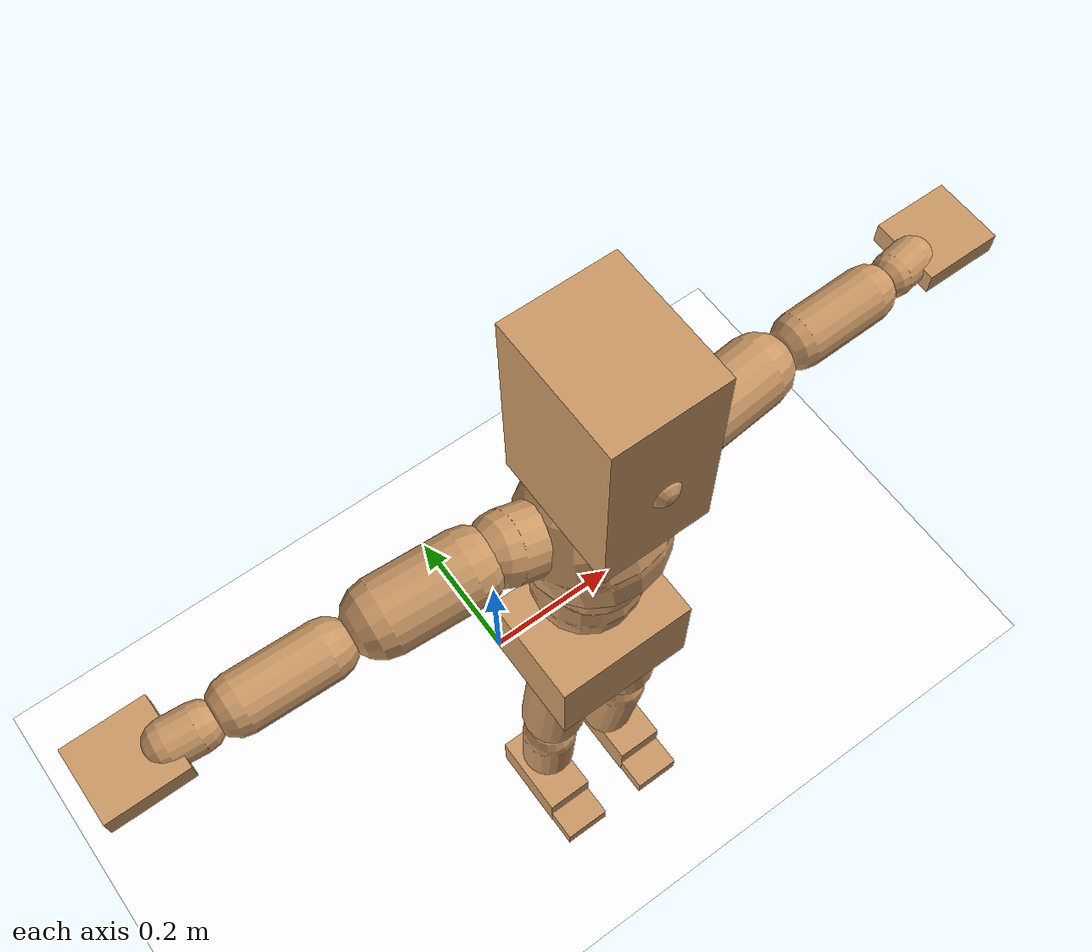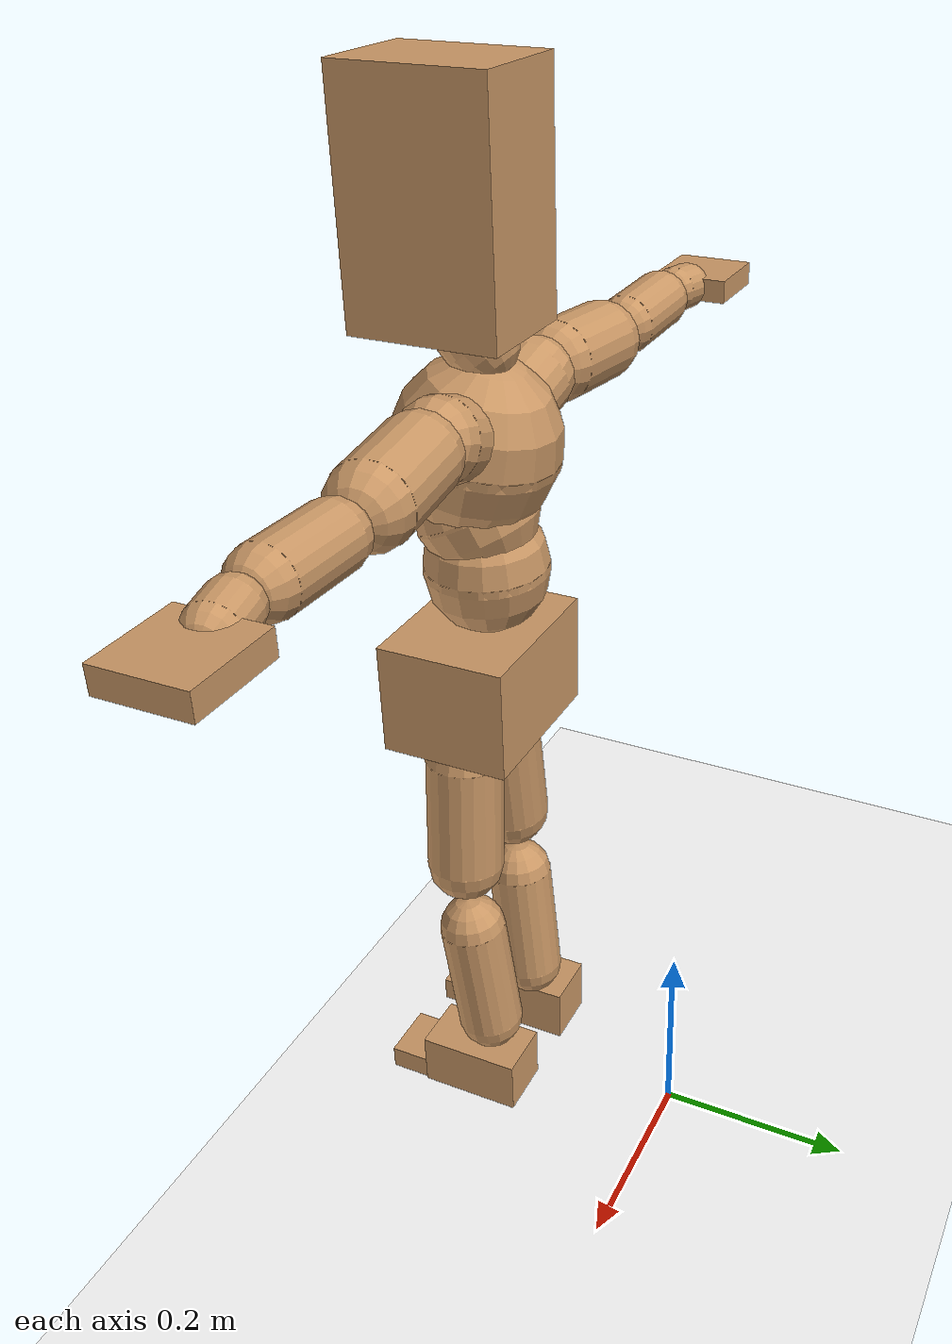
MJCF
<mujoco model="humanoid">
  <option integrator="implicitfast" />

  <visual>
    <global offwidth="1280" offheight="960" />
    <headlight active="1" ambient="0.34 0.34 0.34" diffuse="0.5 0.5 0.5" />
  </visual>

  <default>
    <joint damping="2" stiffness="2" armature="0.01" limited="true" solimplimit="0 .99 .01" />
    <geom condim="1" friction="0.7 0.005 0.0001" solimp=".99 .99 .003" solref="0.015 1" margin="0.001" rgba="0.8 0.6 .4 1" />
    <default class="smplcontact">
      <geom condim="3" friction="1. 0.005 0.0001" solref="0.015 1" solimp="0.98 0.98 0.001" priority="1" />
    </default>
    <default class="stiff_medium">
      <joint stiffness="10" />
    </default>
    <default class="stiff_medium_higher">
      <joint stiffness="50" />
    </default>
    <default class="stiff_high">
      <joint stiffness="100" />
    </default>
  </default>

  <asset>
    <texture type="skybox" builtin="gradient" rgb1="0.99 0.99 0.99" rgb2="0.608 0.828 0.892" width="100" />
    <texture builtin="flat" height="1278" mark="cross" markrgb="1 1 1" name="texgeom" random="0.01" rgb1="0.8 0.6 0.4" rgb2="0.8 0.6 0.4" type="cube" width="127" />
    <texture name="texplane" type="2d" builtin="checker" markrgb="1 1 1" rgb1="0.756 0.772 0.76" rgb2="0.6 0.6 0.6" width="100" height="100" />
    <material name="MatPlane" reflectance="0.5" texture="texplane" texrepeat="1 1" texuniform="true" />
    <material name="geom" texture="texgeom" texuniform="true" />
  </asset>

  <worldbody>
    <light name="tracking_light" pos="0 0 7" dir="0 0 -1" directional="true" cutoff="100" exponent="1" diffuse="1 1 1" specular="0.1 0.1 0.1" mode="trackcom" />
    <camera name="back" pos="0 3 2.4" xyaxes="-1 0 0 0 -1 2" mode="trackcom" />
    <camera name="side" pos="-3 0 2.4" xyaxes="0 -1 0 1 0 2" mode="trackcom" />
    <camera name="front_side" pos="-2.8 -2.8 0.8" xyaxes="0.5 -0.5 0 0.1 0.1 1" mode="trackcom" />
    <geom condim="3" name="floor" pos="0 0 0" rgba="1 1 1 1" size="100 100 .2" type="plane" material="MatPlane" />
    <body name="Pelvis" pos="-0.0018 -0.2233 0.516983" euler="90 0 0">
      <site name="Pelvis" size="0.01" />
      <freejoint name="Pelvis" />
      <geom type="box" pos="-0.0000 -0.0121 -0.0055" size="0.0853936 0.0576746 0.0663019" quat="1.0000 0.0000 0.0000 0.0000" density="3165.830099" name="Pelvis" />
      <body name="L_Hip" pos="0.0379904 -0.0499615 -0.00371705">
        <joint name="L_Hip_x" type="hinge" pos="0 0 0" axis="1 0 0" stiffness="10" range="-160.0 22.92" class="stiff_medium" damping="15" />
        <joint name="L_Hip_y" type="hinge" pos="0 0 0" axis="0 1 0" stiffness="10" range="-70.0 70.0" class="stiff_medium" damping="10" />
        <joint name="L_Hip_z" type="hinge" pos="0 0 0" axis="0 0 1" stiffness="10" range="-28.65 90.0" class="stiff_medium" damping="10" />
        <geom type="capsule" density="2040.816327" fromto="0.00377171 -0.0409968 -0.000491962 0.0149775 -0.164097 -0.00196785" size="0.0399985" name="L_Hip" />
        <body name="L_Knee" pos="0.0187492 -0.205093 -0.00245981">
          <joint name="L_Knee_x" type="hinge" pos="0 0 0" axis="1 0 0" range="-5.16 171.89" damping="8" />
          <joint name="L_Knee_y" type="hinge" pos="0 0 0" axis="0 1 0" range="-4.58 6.88" damping="8" />
          <joint name="L_Knee_z" type="hinge" pos="0 0 0" axis="0 0 1" range="-6.88 4.58" damping="8" />
          <geom type="capsule" density="1234.567901" fromto="-0.00147589 -0.0435113 -0.00475563 -0.00595821 -0.174045 -0.0191319" size="0.0351856" name="L_Knee" />
          <body name="L_Ankle" pos="-0.00743409 -0.217557 -0.0238875">
            <joint name="L_Ankle_x" type="hinge" pos="0 0 0" axis="1 0 0" range="-45.84 45.84" class="stiff_medium" damping="6" />
            <joint name="L_Ankle_y" type="hinge" pos="0 0 0" axis="0 1 0" range="-74.48 22.92" class="stiff_medium" damping="3" />
            <joint name="L_Ankle_z" type="hinge" pos="0 0 0" axis="0 0 1" range="-4.58 4.58" class="stiff_medium" damping="6" />
            <geom type="box" pos="0.0127363 -0.0130643 0.0132283" size="0.0314134 0.0301777 0.0552824" quat="1.0000 0.0000 0.0000 0.0000" density="449.071558" name="L_Ankle" class="smplcontact" />
            <body name="L_Toe" pos="0.0144309 -0.0305016 0.0652123">
              <joint name="L_Toe_x" type="hinge" pos="0 0 0" axis="1 0 0" range="-91.67 22.92" />
              <joint name="L_Toe_y" type="hinge" pos="0 0 0" axis="0 1 0" range="-4.58 4.58" />
              <joint name="L_Toe_z" type="hinge" pos="0 0 0" axis="0 0 1" range="-4.58 4.58" />
              <geom type="box" pos="-0.00163987 0.00300643 0.0135563" size="0.0310882 0.0130076 0.0322589" quat="1.0000 0.0000 0.0000 0.0000" density="423.206892" name="L_Toe" class="smplcontact" />
            </body>
          </body>
        </body>
      </body>
      <body name="R_Hip" pos="-0.0370065 -0.0494695 -0.00235049">
        <joint name="R_Hip_x" type="hinge" pos="0 0 0" axis="1 0 0" stiffness="10" range="-160.0 22.92" class="stiff_medium" damping="15" />
        <joint name="R_Hip_y" type="hinge" pos="0 0 0" axis="0 1 0" stiffness="10" range="-70.0 70.0" class="stiff_medium" damping="10" />
        <joint name="R_Hip_z" type="hinge" pos="0 0 0" axis="0 0 1" stiffness="10" range="-90.0 28.65" class="stiff_medium" damping="10" />
        <geom type="capsule" density="2040.816327" fromto="-0.00420901 -0.0418168 -0.000983924 -0.0167267 -0.167322 -0.00388103" size="0.0394131" name="R_Hip" />
        <body name="R_Knee" pos="-0.0209357 -0.209139 -0.00486496">
          <joint name="R_Knee_x" type="hinge" pos="0 0 0" axis="1 0 0" range="-5.16 171.89" damping="8" />
          <joint name="R_Knee_y" type="hinge" pos="0 0 0" axis="0 1 0" range="-6.88 4.58" damping="8" />
          <joint name="R_Knee_z" type="hinge" pos="0 0 0" axis="0 0 1" range="-4.58 6.88" damping="8" />
          <geom type="capsule" density="1234.567901" fromto="0.0017492 -0.043566 -0.00464631 0.00688747 -0.174209 -0.0184759" size="0.0351856" name="R_Knee" />
          <body name="R_Ankle" pos="0.00863667 -0.217775 -0.0231222">
            <joint name="R_Ankle_x" type="hinge" pos="0 0 0" axis="1 0 0" range="-45.84 45.84" class="stiff_medium" damping="6" />
            <joint name="R_Ankle_y" type="hinge" pos="0 0 0" axis="0 1 0" range="-22.92 74.48" class="stiff_medium" damping="3" />
            <joint name="R_Ankle_z" type="hinge" pos="0 0 0" axis="0 0 1" range="-4.58 4.58" class="stiff_medium" damping="6" />
            <geom type="box" pos="-0.0115884 -0.00951127 0.0139936" size="0.0314134 0.0310882 0.056258" quat="1.0000 0.0000 0.0000 0.0000" density="434.700981" name="R_Ankle" class="smplcontact" />
            <body name="R_Toe" pos="-0.0138843 -0.0262926 0.0673988">
              <joint name="R_Toe_x" type="hinge" pos="0 0 0" axis="1 0 0" range="-91.67 22.92" />
              <joint name="R_Toe_y" type="hinge" pos="0 0 0" axis="0 1 0" range="-4.58 4.58" />
              <joint name="R_Toe_z" type="hinge" pos="0 0 0" axis="0 0 1" range="-4.58 4.58" />
              <geom type="box" pos="0.00229582 0.00245981 0.0124084" size="0.0311533 0.0140482 0.0320638" quat="1.0000 0.0000 0.0000 0.0000" density="407.384095" name="R_Toe" class="smplcontact" />
            </body>
          </body>
        </body>
      </body>
      <body name="Torso" pos="-0.00156977 0.0684419 -0.0167651">
        <joint name="Torso_x" type="hinge" pos="0 0 0" axis="1 0 0" range="-25.78 57.3" class="stiff_medium" damping="15" />
        <joint name="Torso_y" type="hinge" pos="0 0 0" axis="0 1 0" range="-57.3 57.3" class="stiff_high" damping="20" />
        <joint name="Torso_z" type="hinge" pos="0 0 0" axis="0 0 1" range="-34.38 34.38" class="stiff_high" damping="20" />
        <geom type="capsule" density="2040.816327" fromto="0.00156977 0.0381768 0.000313954 0.00188372 0.0466535 0.000376744" size="0.0614291" name="Torso" />
        <body name="Spine" pos="0.00345349 0.0848931 0.000690698">
          <joint name="Spine_x" type="hinge" pos="0 0 0" axis="1 0 0" stiffness="10" range="-25.78 57.3" class="stiff_medium" damping="15" />
          <joint name="Spine_y" type="hinge" pos="0 0 0" axis="0 1 0" stiffness="10" range="-57.3 57.3" class="stiff_high" damping="8" />
          <joint name="Spine_z" type="hinge" pos="0 0 0" axis="0 0 1" stiffness="20" range="-34.38 34.38" class="stiff_high" damping="12" />
          <geom type="capsule" density="2040.816327" fromto="0.000439535 0.0149442 0.00715814 0.000502326 0.0182721 0.0087907" size="0.0603107" name="Spine" />
          <body name="Chest" pos="0.000941861 0.0332163 0.0159488">
            <joint name="Chest_x" type="hinge" pos="0 0 0" axis="1 0 0" stiffness="10" range="-25.78 57.3" class="stiff_medium" damping="15" />
            <joint name="Chest_y" type="hinge" pos="0 0 0" axis="0 1 0" stiffness="10" range="-57.3 57.3" class="stiff_high" damping="8" />
            <joint name="Chest_z" type="hinge" pos="0 0 0" axis="0 0 1" stiffness="20" range="-34.38 34.38" class="stiff_high" damping="12" />
            <geom type="capsule" density="2040.816327" fromto="-0.000565116 0.0428233 -0.0108628 -0.000627907 0.0523047 -0.0133116" size="0.0800415" name="Chest" />
            <body name="Neck" pos="-0.00175814 0.134309 -0.0269372">
              <joint name="Neck_x" type="hinge" pos="0 0 0" axis="1 0 0" range="-28.65 57.3" class="stiff_medium_higher" damping="10" />
              <joint name="Neck_y" type="hinge" pos="0 0 0" axis="0 1 0" range="-40.11 40.11" class="stiff_medium_higher" damping="10" />
              <joint name="Neck_z" type="hinge" pos="0 0 0" axis="0 0 1" range="-40.11 40.11" class="stiff_medium_higher" damping="10" />
              <geom type="capsule" density="1000" fromto="0.000627907 0.00816279 0.00646744 0.00257442 0.0326512 0.025807" size="0.0348284" name="Neck" />
              <body name="Head" pos="0.00437558 0.0546947 0.0431668">
                <joint name="Head_x" type="hinge" pos="0 0 0" axis="1 0 0" range="-28.65 57.3" class="stiff_medium_higher" damping="2" />
                <joint name="Head_y" type="hinge" pos="0 0 0" axis="0 1 0" range="-40.11 40.11" class="stiff_medium_higher" damping="2" />
                <joint name="Head_z" type="hinge" pos="0 0 0" axis="0 0 1" range="-40.11 40.11" class="stiff_medium_higher" damping="2" />
                <geom type="box" pos="-0.00353412 0.0737117 -0.0097609" size="0.0580232 0.110493 0.0727684" quat="1.0000 0.0000 0.0000 0.0000" density="1018.069894" name="Head" />
                <geom type="capsule" name="nose" size="0.0191496 0.00957479" pos="0 0.058902 0.0420729" quat="1 0 0 0" mass="0" contype="0" conaffinity="0" />
              </body>
            </body>
            <body name="L_Thorax" pos="0.0456172 0.0704519 -0.0197404">
              <joint name="L_Thorax_x" type="hinge" pos="0 0 0" axis="1 0 0" range="-10.89 4.58" class="stiff_medium_higher" damping="20" />
              <joint name="L_Thorax_y" type="hinge" pos="0 0 0" axis="0 1 0" range="-28.65 17.19" class="stiff_medium_higher" damping="20" />
              <joint name="L_Thorax_z" type="hinge" pos="0 0 0" axis="0 0 1" range="-31.51 40.11" class="stiff_medium_higher" damping="20" />
              <geom type="capsule" density="1000" fromto="0.0105359 0.00353128 -0.00104202 0.0421438 0.0141251 -0.00411018" size="0.0392358" name="L_Thorax" />
              <body name="L_Shoulder" pos="0.0526797 0.0176564 -0.00515219">
                <joint name="L_Shoulder_x" type="hinge" pos="0 0 0" axis="1 0 0" range="-97.4 97.4" class="stiff_medium" damping="6" />
                <joint name="L_Shoulder_y" type="hinge" pos="0 0 0" axis="0 1 0" range="-108.86 80.21" class="stiff_medium" damping="6" />
                <joint name="L_Shoulder_z" type="hinge" pos="0 0 0" axis="0 0 1" range="-97.4 85.94" class="stiff_medium" damping="6" />
                <geom type="capsule" density="1000" fromto="0.0300448 -0.00150513 -0.00318394 0.120237 -0.00590476 -0.0127358" size="0.0389346" name="L_Shoulder" />
                <body name="L_Elbow" pos="0.150282 -0.00740989 -0.0159197">
                  <joint name="L_Elbow_x" type="hinge" pos="0 0 0" axis="1 0 0" range="-17.19 4.58" damping="5" />
                  <joint name="L_Elbow_y" type="hinge" pos="0 0 0" axis="0 1 0" range="-180.0 17.19" damping="5" />
                  <joint name="L_Elbow_z" type="hinge" pos="0 0 0" axis="0 0 1" range="-100.84 4.58" damping="5" />
                  <geom type="capsule" density="1000" fromto="0.0288291 0.00104202 -0.00011578 0.115432 0.00416807 -0.000521008" size="0.0305" name="L_Elbow" />
                  <body name="L_Wrist" pos="0.144261 0.00521008 -0.000694678">
                    <joint name="L_Wrist_x" type="hinge" pos="0 0 0" axis="1 0 0" range="-180.0 22.92" />
                    <joint name="L_Wrist_y" type="hinge" pos="0 0 0" axis="0 1 0" range="-17.19 17.19" />
                    <joint name="L_Wrist_z" type="hinge" pos="0 0 0" axis="0 0 1" range="-22.92 22.92" />
                    <geom type="capsule" density="1000" fromto="0.00972549 -0.000926237 -0.00173669 0.0389019 -0.00376284 -0.00694678" size="0.0239482" name="L_Wrist" class="smplcontact" />
                    <body name="L_Hand" pos="0.0486274 -0.00474696 -0.00862558">
                      <joint name="L_Hand_x" type="hinge" pos="0 0 0" axis="1 0 0" range="-17.19 17.19" />
                      <joint name="L_Hand_y" type="hinge" pos="0 0 0" axis="0 1 0" range="-51.57 51.57" />
                      <joint name="L_Hand_z" type="hinge" pos="0 0 0" axis="0 0 1" range="-91.67 91.67" />
                      <geom type="box" pos="0.0285397 0.000578898 -0.00335761" size="0.0440556 0.0118988 0.0405161" quat="1.0000 0.0000 0.0000 0.0000" density="400.552564" name="L_Hand" class="smplcontact" />
                    </body>
                  </body>
                </body>
              </body>
            </body>
            <body name="R_Thorax" pos="-0.0473539 0.0687731 -0.0223455">
              <joint name="R_Thorax_x" type="hinge" pos="0 0 0" axis="1 0 0" range="-10.89 4.58" class="stiff_medium_higher" damping="20" />
              <joint name="R_Thorax_y" type="hinge" pos="0 0 0" axis="0 1 0" range="-17.19 28.65" class="stiff_medium_higher" damping="20" />
              <joint name="R_Thorax_z" type="hinge" pos="0 0 0" axis="0 0 1" range="-40.11 31.51" class="stiff_medium_higher" damping="20" />
              <geom type="capsule" density="1000" fromto="-0.0111148 0.00376284 -0.00104202 -0.0444594 0.0150513 -0.00422596" size="0.0384828" name="R_Thorax" />
              <body name="R_Shoulder" pos="-0.0555742 0.0188721 -0.00526797">
                <joint name="R_Shoulder_x" type="hinge" pos="0 0 0" axis="1 0 0" range="-97.4 97.4" class="stiff_medium" damping="6" />
                <joint name="R_Shoulder_y" type="hinge" pos="0 0 0" axis="0 1 0" range="-80.21 108.86" class="stiff_medium" damping="6" />
                <joint name="R_Shoulder_z" type="hinge" pos="0 0 0" axis="0 0 1" range="-85.94 97.4" class="stiff_medium" damping="6" />
                <geom type="capsule" density="1000" fromto="-0.0293501 -0.00156302 -0.00248926 -0.117516 -0.00619421 -0.00989916" size="0.0399889" name="R_Shoulder" />
                <body name="R_Elbow" pos="-0.146866 -0.00769934 -0.0123884">
                  <joint name="R_Elbow_x" type="hinge" pos="0 0 0" axis="1 0 0" range="-17.19 4.58" damping="5" />
                  <joint name="R_Elbow_y" type="hinge" pos="0 0 0" axis="0 1 0" range="-17.19 180.0" damping="5" />
                  <joint name="R_Elbow_z" type="hinge" pos="0 0 0" axis="0 0 1" range="-4.58 100.84" damping="5" />
                  <geom type="capsule" density="1000" fromto="-0.0295817 0.000926237 -0.000636788 -0.118211 0.00358917 -0.00254715" size="0.030726" name="R_Elbow" />
                  <body name="R_Wrist" pos="-0.147793 0.0045154 -0.00324183">
                    <joint name="R_Wrist_x" type="hinge" pos="0 0 0" axis="1 0 0" range="-180.0 22.92" />
                    <joint name="R_Wrist_y" type="hinge" pos="0 0 0" axis="0 1 0" range="-17.19 17.19" />
                    <joint name="R_Wrist_z" type="hinge" pos="0 0 0" axis="0 0 1" range="-22.92 22.92" />
                    <geom type="capsule" density="1000" fromto="-0.00978338 -0.000694678 -0.00121569 -0.0391914 -0.0028366 -0.00480485" size="0.0245506" name="R_Wrist" class="smplcontact" />
                    <body name="R_Hand" pos="-0.0489748 -0.00353128 -0.00596265">
                      <joint name="R_Hand_x" type="hinge" pos="0 0 0" axis="1 0 0" range="-17.19 17.19" />
                      <joint name="R_Hand_y" type="hinge" pos="0 0 0" axis="0 1 0" range="-51.57 51.57" />
                      <joint name="R_Hand_z" type="hinge" pos="0 0 0" axis="0 0 1" range="-91.67 91.67" />
                      <geom type="box" pos="-0.0267451 -0.000521008 -0.00457329" size="0.0428507 0.0123506 0.0411186" quat="1.0000 0.0000 0.0000 0.0000" density="403.679611" name="R_Hand" class="smplcontact" />
                    </body>
                  </body>
                </body>
              </body>
            </body>
          </body>
        </body>
      </body>
    </body>
  </worldbody>
  <actuator>
    <general name="L_Hip_x" joint="L_Hip_x" biastype="affine" gainprm="287.33006409732246" biasprm="-215.3247604770444 -180 -2.0" ctrllimited="true" ctrlrange="-1 1" forcerange="-360 360" />
    <general name="L_Hip_y" joint="L_Hip_y" biastype="affine" gainprm="219.9114857512855" biasprm="0.0 -180 -2.0" ctrllimited="true" ctrlrange="-1 1" forcerange="-360 360" />
    <general name="L_Hip_z" joint="L_Hip_z" biastype="affine" gainprm="186.3749841742145" biasprm="96.3683546488669 -180 -2.0" ctrllimited="true" ctrlrange="-1 1" forcerange="-360 360" />
    <general name="L_Knee_x" joint="L_Knee_x" biastype="affine" gainprm="278.10948965903646" biasprm="261.8988715665131 -180 -2.0" ctrllimited="true" ctrlrange="-1 1" forcerange="-360 360" />
    <general name="L_Knee_y" joint="L_Knee_y" biastype="affine" gainprm="18.001325905069514" biasprm="3.612831551628262 -180 -2.0" ctrllimited="true" ctrlrange="-1 1" forcerange="-360 360" />
    <general name="L_Knee_z" joint="L_Knee_z" biastype="affine" gainprm="18.001325905069514" biasprm="-3.612831551628262 -180 -2.0" ctrllimited="true" ctrlrange="-1 1" forcerange="-360 360" />
    <general name="L_Ankle_x" joint="L_Ankle_x" biastype="affine" gainprm="72.00530362027807" biasprm="0.0 -90 -2.0" ctrllimited="true" ctrlrange="-1 1" forcerange="-180 180" />
    <general name="L_Ankle_y" joint="L_Ankle_y" biastype="affine" gainprm="76.49778111491148" biasprm="-40.49512930477244 -90 -2.0" ctrllimited="true" ctrlrange="-1 1" forcerange="-180 180" />
    <general name="L_Ankle_z" joint="L_Ankle_z" biastype="affine" gainprm="7.1942471767206255" biasprm="0.0 -90 -2.0" ctrllimited="true" ctrlrange="-1 1" forcerange="-180 180" />
    <general name="L_Toe_x" joint="L_Toe_x" biastype="affine" gainprm="71.99902043497087" biasprm="-43.19689898685965 -72 -0.8" ctrllimited="true" ctrlrange="-1 1" forcerange="-144 144" />
    <general name="L_Toe_y" joint="L_Toe_y" biastype="affine" gainprm="5.755397741376501" biasprm="0.0 -72 -0.8" ctrllimited="true" ctrlrange="-1 1" forcerange="-144 144" />
    <general name="L_Toe_z" joint="L_Toe_z" biastype="affine" gainprm="5.755397741376501" biasprm="0.0 -72 -0.8" ctrllimited="true" ctrlrange="-1 1" forcerange="-144 144" />
    <general name="R_Hip_x" joint="R_Hip_x" biastype="affine" gainprm="287.33006409732246" biasprm="-215.3247604770444 -180 -2.0" ctrllimited="true" ctrlrange="-1 1" forcerange="-360 360" />
    <general name="R_Hip_y" joint="R_Hip_y" biastype="affine" gainprm="219.9114857512855" biasprm="0.0 -180 -2.0" ctrllimited="true" ctrlrange="-1 1" forcerange="-360 360" />
    <general name="R_Hip_z" joint="R_Hip_z" biastype="affine" gainprm="186.3749841742145" biasprm="-96.3683546488669 -180 -2.0" ctrllimited="true" ctrlrange="-1 1" forcerange="-360 360" />
    <general name="R_Knee_x" joint="R_Knee_x" biastype="affine" gainprm="278.10948965903646" biasprm="261.8988715665131 -180 -2.0" ctrllimited="true" ctrlrange="-1 1" forcerange="-360 360" />
    <general name="R_Knee_y" joint="R_Knee_y" biastype="affine" gainprm="18.001325905069514" biasprm="-3.612831551628262 -180 -2.0" ctrllimited="true" ctrlrange="-1 1" forcerange="-360 360" />
    <general name="R_Knee_z" joint="R_Knee_z" biastype="affine" gainprm="18.001325905069514" biasprm="3.612831551628262 -180 -2.0" ctrllimited="true" ctrlrange="-1 1" forcerange="-360 360" />
    <general name="R_Ankle_x" joint="R_Ankle_x" biastype="affine" gainprm="72.00530362027807" biasprm="0.0 -90 -2.0" ctrllimited="true" ctrlrange="-1 1" forcerange="-180 180" />
    <general name="R_Ankle_y" joint="R_Ankle_y" biastype="affine" gainprm="76.49778111491148" biasprm="40.49512930477244 -90 -2.0" ctrllimited="true" ctrlrange="-1 1" forcerange="-180 180" />
    <general name="R_Ankle_z" joint="R_Ankle_z" biastype="affine" gainprm="7.1942471767206255" biasprm="0.0 -90 -2.0" ctrllimited="true" ctrlrange="-1 1" forcerange="-180 180" />
    <general name="R_Toe_x" joint="R_Toe_x" biastype="affine" gainprm="71.99902043497087" biasprm="-43.19689898685965 -72 -0.8" ctrllimited="true" ctrlrange="-1 1" forcerange="-144 144" />
    <general name="R_Toe_y" joint="R_Toe_y" biastype="affine" gainprm="5.755397741376501" biasprm="0.0 -72 -0.8" ctrllimited="true" ctrlrange="-1 1" forcerange="-144 144" />
    <general name="R_Toe_z" joint="R_Toe_z" biastype="affine" gainprm="5.755397741376501" biasprm="0.0 -72 -0.8" ctrllimited="true" ctrlrange="-1 1" forcerange="-144 144" />
    <general name="Torso_x" joint="Torso_x" biastype="affine" gainprm="174.00234510682668" biasprm="66.0153336274335 -240 -4.0" ctrllimited="true" ctrlrange="-1 1" forcerange="-360 360" />
    <general name="Torso_y" joint="Torso_y" biastype="affine" gainprm="240.0176787342602" biasprm="0.0 -240 -4.0" ctrllimited="true" ctrlrange="-1 1" forcerange="-360 360" />
    <general name="Torso_z" joint="Torso_z" biastype="affine" gainprm="144.01060724055614" biasprm="0.0 -240 -4.0" ctrllimited="true" ctrlrange="-1 1" forcerange="-360 360" />
    <general name="Spine_x" joint="Spine_x" biastype="affine" gainprm="174.00234510682668" biasprm="66.0153336274335 -240 -4.0" ctrllimited="true" ctrlrange="-1 1" forcerange="-360 360" />
    <general name="Spine_y" joint="Spine_y" biastype="affine" gainprm="240.0176787342602" biasprm="0.0 -240 -4.0" ctrllimited="true" ctrlrange="-1 1" forcerange="-360 360" />
    <general name="Spine_z" joint="Spine_z" biastype="affine" gainprm="144.01060724055614" biasprm="0.0 -240 -4.0" ctrllimited="true" ctrlrange="-1 1" forcerange="-360 360" />
    <general name="Chest_x" joint="Chest_x" biastype="affine" gainprm="174.00234510682668" biasprm="66.0153336274335 -240 -4.0" ctrllimited="true" ctrlrange="-1 1" forcerange="-360 360" />
    <general name="Chest_y" joint="Chest_y" biastype="affine" gainprm="240.0176787342602" biasprm="0.0 -240 -4.0" ctrllimited="true" ctrlrange="-1 1" forcerange="-360 360" />
    <general name="Chest_z" joint="Chest_z" biastype="affine" gainprm="144.01060724055614" biasprm="0.0 -240 -4.0" ctrllimited="true" ctrlrange="-1 1" forcerange="-360 360" />
    <general name="Neck_x" joint="Neck_x" biastype="affine" gainprm="27.00198885760427" biasprm="9.000662952534757 -36 -0.8" ctrllimited="true" ctrlrange="-1 1" forcerange="-72 72" />
    <general name="Neck_y" joint="Neck_y" biastype="affine" gainprm="25.20185626709732" biasprm="0.0 -36 -0.8" ctrllimited="true" ctrlrange="-1 1" forcerange="-72 72" />
    <general name="Neck_z" joint="Neck_z" biastype="affine" gainprm="25.20185626709732" biasprm="0.0 -36 -0.8" ctrllimited="true" ctrlrange="-1 1" forcerange="-72 72" />
    <general name="Head_x" joint="Head_x" biastype="affine" gainprm="18.001325905069514" biasprm="6.000441968356505 -24 -0.8" ctrllimited="true" ctrlrange="-1 1" forcerange="-48 48" />
    <general name="Head_y" joint="Head_y" biastype="affine" gainprm="16.801237511398213" biasprm="0.0 -24 -0.8" ctrllimited="true" ctrlrange="-1 1" forcerange="-48 48" />
    <general name="Head_z" joint="Head_z" biastype="affine" gainprm="16.801237511398213" biasprm="0.0 -24 -0.8" ctrllimited="true" ctrlrange="-1 1" forcerange="-48 48" />
    <general name="L_Thorax_x" joint="L_Thorax_x" biastype="affine" gainprm="16.200146117011364" biasprm="-6.6078165480505335 -120 -1.6" ctrllimited="true" ctrlrange="-1 1" forcerange="-240 240" />
    <general name="L_Thorax_y" joint="L_Thorax_y" biastype="affine" gainprm="48.00353574685204" biasprm="-12.00088393671301 -120 -1.6" ctrllimited="true" ctrlrange="-1 1" forcerange="-240 240" />
    <general name="L_Thorax_z" joint="L_Thorax_z" biastype="affine" gainprm="75.00028861670033" biasprm="9.00589894029074 -120 -1.6" ctrllimited="true" ctrlrange="-1 1" forcerange="-240 240" />
    <general name="L_Shoulder_x" joint="L_Shoulder_x" biastype="affine" gainprm="81.5976331892389" biasprm="0.0 -48 -1.6" ctrllimited="true" ctrlrange="-1 1" forcerange="-96 96" />
    <general name="L_Shoulder_y" joint="L_Shoulder_y" biastype="affine" gainprm="79.19745640189629" biasprm="-12.00088393671301 -48 -1.6" ctrllimited="true" ctrlrange="-1 1" forcerange="-96 96" />
    <general name="L_Shoulder_z" joint="L_Shoulder_z" biastype="affine" gainprm="76.79727961455369" biasprm="-4.800353574685214 -48 -1.6" ctrllimited="true" ctrlrange="-1 1" forcerange="-96 96" />
    <general name="L_Elbow_x" joint="L_Elbow_x" biastype="affine" gainprm="13.67849441372996" biasprm="-7.923096672353461 -72 -0.8" ctrllimited="true" ctrlrange="-1 1" forcerange="-144 144" />
    <general name="L_Elbow_y" joint="L_Elbow_y" biastype="affine" gainprm="123.89813107227425" biasprm="-102.29653998619085 -72 -0.8" ctrllimited="true" ctrlrange="-1 1" forcerange="-144 144" />
    <general name="L_Elbow_z" joint="L_Elbow_z" biastype="affine" gainprm="66.23733950828719" biasprm="-60.4819417669107 -72 -0.8" ctrllimited="true" ctrlrange="-1 1" forcerange="-144 144" />
    <general name="L_Wrist_x" joint="L_Wrist_x" biastype="affine" gainprm="21.24973270888136" biasprm="-16.449379134196157 -12 -0.8" ctrllimited="true" ctrlrange="-1 1" forcerange="-24 24" />
    <general name="L_Wrist_y" joint="L_Wrist_y" biastype="affine" gainprm="3.6002651810139037" biasprm="0.0 -12 -0.8" ctrllimited="true" ctrlrange="-1 1" forcerange="-24 24" />
    <general name="L_Wrist_z" joint="L_Wrist_z" biastype="affine" gainprm="4.800353574685205" biasprm="0.0 -12 -0.8" ctrllimited="true" ctrlrange="-1 1" forcerange="-24 24" />
    <general name="L_Hand_x" joint="L_Hand_x" biastype="affine" gainprm="3.6002651810139037" biasprm="0.0 -12 -0.8" ctrllimited="true" ctrlrange="-1 1" forcerange="-24 24" />
    <general name="L_Hand_y" joint="L_Hand_y" biastype="affine" gainprm="10.800795543041708" biasprm="0.0 -12 -0.8" ctrllimited="true" ctrlrange="-1 1" forcerange="-24 24" />
    <general name="L_Hand_z" joint="L_Hand_z" biastype="affine" gainprm="19.199319903638422" biasprm="0.0 -12 -0.8" ctrllimited="true" ctrlrange="-1 1" forcerange="-24 24" />
    <general name="R_Thorax_x" joint="R_Thorax_x" biastype="affine" gainprm="16.200146117011364" biasprm="-6.6078165480505335 -120 -1.6" ctrllimited="true" ctrlrange="-1 1" forcerange="-240 240" />
    <general name="R_Thorax_y" joint="R_Thorax_y" biastype="affine" gainprm="48.00353574685204" biasprm="12.000883936713002 -120 -1.6" ctrllimited="true" ctrlrange="-1 1" forcerange="-240 240" />
    <general name="R_Thorax_z" joint="R_Thorax_z" biastype="affine" gainprm="75.00028861670033" biasprm="-9.00589894029074 -120 -1.6" ctrllimited="true" ctrlrange="-1 1" forcerange="-240 240" />
    <general name="R_Shoulder_x" joint="R_Shoulder_x" biastype="affine" gainprm="81.5976331892389" biasprm="0.0 -48 -1.6" ctrllimited="true" ctrlrange="-1 1" forcerange="-96 96" />
    <general name="R_Shoulder_y" joint="R_Shoulder_y" biastype="affine" gainprm="79.19745640189629" biasprm="12.00088393671301 -48 -1.6" ctrllimited="true" ctrlrange="-1 1" forcerange="-96 96" />
    <general name="R_Shoulder_z" joint="R_Shoulder_z" biastype="affine" gainprm="76.79727961455369" biasprm="4.800353574685204 -48 -1.6" ctrllimited="true" ctrlrange="-1 1" forcerange="-96 96" />
    <general name="R_Elbow_x" joint="R_Elbow_x" biastype="affine" gainprm="13.67849441372996" biasprm="-7.923096672353461 -72 -0.8" ctrllimited="true" ctrlrange="-1 1" forcerange="-144 144" />
    <general name="R_Elbow_y" joint="R_Elbow_y" biastype="affine" gainprm="123.89813107227425" biasprm="102.29653998619085 -72 -0.8" ctrllimited="true" ctrlrange="-1 1" forcerange="-144 144" />
    <general name="R_Elbow_z" joint="R_Elbow_z" biastype="affine" gainprm="66.23733950828719" biasprm="60.481941766910694 -72 -0.8" ctrllimited="true" ctrlrange="-1 1" forcerange="-144 144" />
    <general name="R_Wrist_x" joint="R_Wrist_x" biastype="affine" gainprm="21.24973270888136" biasprm="-16.449379134196157 -12 -0.8" ctrllimited="true" ctrlrange="-1 1" forcerange="-24 24" />
    <general name="R_Wrist_y" joint="R_Wrist_y" biastype="affine" gainprm="3.6002651810139037" biasprm="0.0 -12 -0.8" ctrllimited="true" ctrlrange="-1 1" forcerange="-24 24" />
    <general name="R_Wrist_z" joint="R_Wrist_z" biastype="affine" gainprm="4.800353574685205" biasprm="0.0 -12 -0.8" ctrllimited="true" ctrlrange="-1 1" forcerange="-24 24" />
    <general name="R_Hand_x" joint="R_Hand_x" biastype="affine" gainprm="3.6002651810139037" biasprm="0.0 -12 -0.8" ctrllimited="true" ctrlrange="-1 1" forcerange="-24 24" />
    <general name="R_Hand_y" joint="R_Hand_y" biastype="affine" gainprm="10.800795543041708" biasprm="0.0 -12 -0.8" ctrllimited="true" ctrlrange="-1 1" forcerange="-24 24" />
    <general name="R_Hand_z" joint="R_Hand_z" biastype="affine" gainprm="19.199319903638422" biasprm="0.0 -12 -0.8" ctrllimited="true" ctrlrange="-1 1" forcerange="-24 24" />
  </actuator>
  <contact>
    <exclude body1="Torso" body2="Chest" />
    <exclude body1="Head" body2="Chest" />
    <exclude body1="R_Knee" body2="R_Toe" />
    <exclude body1="R_Knee" body2="L_Ankle" />
    <exclude body1="R_Knee" body2="L_Toe" />
    <exclude body1="L_Knee" body2="L_Toe" />
    <exclude body1="L_Knee" body2="R_Ankle" />
    <exclude body1="L_Knee" body2="R_Toe" />
    <exclude body1="L_Shoulder" body2="Chest" />
    <exclude body1="R_Shoulder" body2="Chest" />
  </contact>
  <sensor>
    <framelinvel name="sensor_Pelvis_framelinvel" objtype="xbody" objname="Pelvis" />
    <framelinvel name="sensor_L_Hip_framelinvel" objtype="xbody" objname="L_Hip" />
    <framelinvel name="sensor_L_Knee_framelinvel" objtype="xbody" objname="L_Knee" />
    <framelinvel name="sensor_L_Ankle_framelinvel" objtype="xbody" objname="L_Ankle" />
    <framelinvel name="sensor_L_Toe_framelinvel" objtype="xbody" objname="L_Toe" />
    <framelinvel name="sensor_R_Hip_framelinvel" objtype="xbody" objname="R_Hip" />
    <framelinvel name="sensor_R_Knee_framelinvel" objtype="xbody" objname="R_Knee" />
    <framelinvel name="sensor_R_Ankle_framelinvel" objtype="xbody" objname="R_Ankle" />
    <framelinvel name="sensor_R_Toe_framelinvel" objtype="xbody" objname="R_Toe" />
    <framelinvel name="sensor_Torso_framelinvel" objtype="xbody" objname="Torso" />
    <framelinvel name="sensor_Spine_framelinvel" objtype="xbody" objname="Spine" />
    <framelinvel name="sensor_Chest_framelinvel" objtype="xbody" objname="Chest" />
    <framelinvel name="sensor_Neck_framelinvel" objtype="xbody" objname="Neck" />
    <framelinvel name="sensor_Head_framelinvel" objtype="xbody" objname="Head" />
    <framelinvel name="sensor_L_Thorax_framelinvel" objtype="xbody" objname="L_Thorax" />
    <framelinvel name="sensor_L_Shoulder_framelinvel" objtype="xbody" objname="L_Shoulder" />
    <framelinvel name="sensor_L_Elbow_framelinvel" objtype="xbody" objname="L_Elbow" />
    <framelinvel name="sensor_L_Wrist_framelinvel" objtype="xbody" objname="L_Wrist" />
    <framelinvel name="sensor_L_Hand_framelinvel" objtype="xbody" objname="L_Hand" />
    <framelinvel name="sensor_R_Thorax_framelinvel" objtype="xbody" objname="R_Thorax" />
    <framelinvel name="sensor_R_Shoulder_framelinvel" objtype="xbody" objname="R_Shoulder" />
    <framelinvel name="sensor_R_Elbow_framelinvel" objtype="xbody" objname="R_Elbow" />
    <framelinvel name="sensor_R_Wrist_framelinvel" objtype="xbody" objname="R_Wrist" />
    <framelinvel name="sensor_R_Hand_framelinvel" objtype="xbody" objname="R_Hand" />
    <frameangvel name="sensor_Pelvis_frameangvel" objtype="xbody" objname="Pelvis" />
    <frameangvel name="sensor_L_Hip_frameangvel" objtype="xbody" objname="L_Hip" />
    <frameangvel name="sensor_L_Knee_frameangvel" objtype="xbody" objname="L_Knee" />
    <frameangvel name="sensor_L_Ankle_frameangvel" objtype="xbody" objname="L_Ankle" />
    <frameangvel name="sensor_L_Toe_frameangvel" objtype="xbody" objname="L_Toe" />
    <frameangvel name="sensor_R_Hip_frameangvel" objtype="xbody" objname="R_Hip" />
    <frameangvel name="sensor_R_Knee_frameangvel" objtype="xbody" objname="R_Knee" />
    <frameangvel name="sensor_R_Ankle_frameangvel" objtype="xbody" objname="R_Ankle" />
    <frameangvel name="sensor_R_Toe_frameangvel" objtype="xbody" objname="R_Toe" />
    <frameangvel name="sensor_Torso_frameangvel" objtype="xbody" objname="Torso" />
    <frameangvel name="sensor_Spine_frameangvel" objtype="xbody" objname="Spine" />
    <frameangvel name="sensor_Chest_frameangvel" objtype="xbody" objname="Chest" />
    <frameangvel name="sensor_Neck_frameangvel" objtype="xbody" objname="Neck" />
    <frameangvel name="sensor_Head_frameangvel" objtype="xbody" objname="Head" />
    <frameangvel name="sensor_L_Thorax_frameangvel" objtype="xbody" objname="L_Thorax" />
    <frameangvel name="sensor_L_Shoulder_frameangvel" objtype="xbody" objname="L_Shoulder" />
    <frameangvel name="sensor_L_Elbow_frameangvel" objtype="xbody" objname="L_Elbow" />
    <frameangvel name="sensor_L_Wrist_frameangvel" objtype="xbody" objname="L_Wrist" />
    <frameangvel name="sensor_L_Hand_frameangvel" objtype="xbody" objname="L_Hand" />
    <frameangvel name="sensor_R_Thorax_frameangvel" objtype="xbody" objname="R_Thorax" />
    <frameangvel name="sensor_R_Shoulder_frameangvel" objtype="xbody" objname="R_Shoulder" />
    <frameangvel name="sensor_R_Elbow_frameangvel" objtype="xbody" objname="R_Elbow" />
    <frameangvel name="sensor_R_Wrist_frameangvel" objtype="xbody" objname="R_Wrist" />
    <frameangvel name="sensor_R_Hand_frameangvel" objtype="xbody" objname="R_Hand" />
    <subtreelinvel name="Chest_subtreelinvel" body="Chest" />
    <gyro name="Pelvis_gyro" site="Pelvis" />
  </sensor>
</mujoco>
